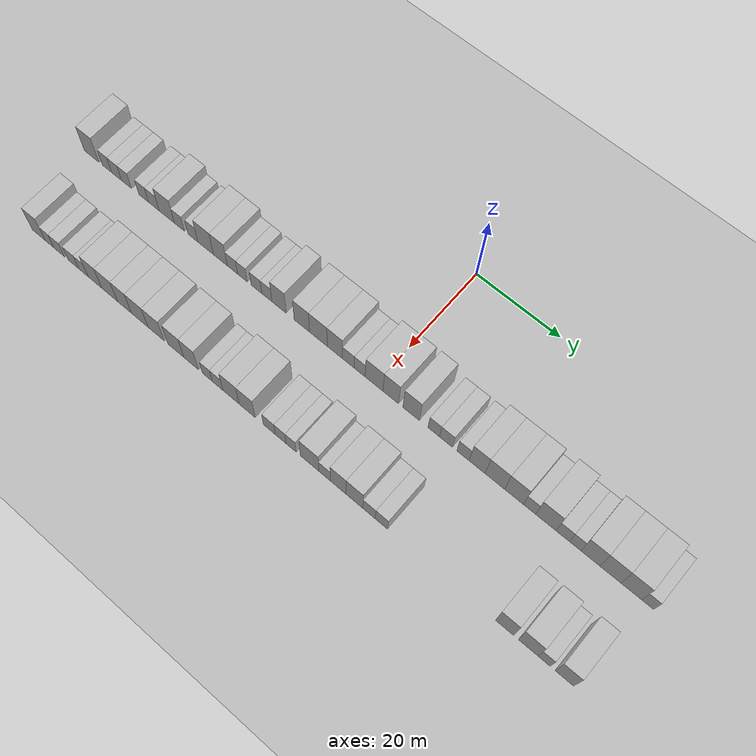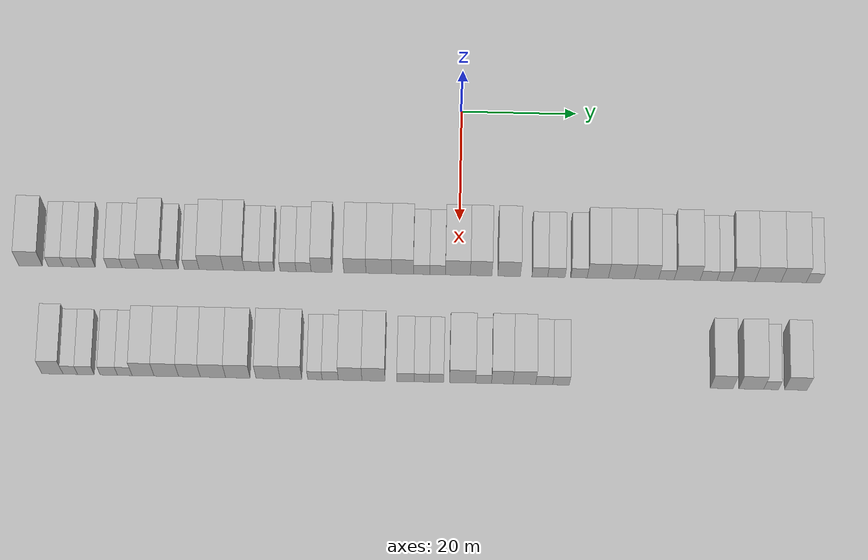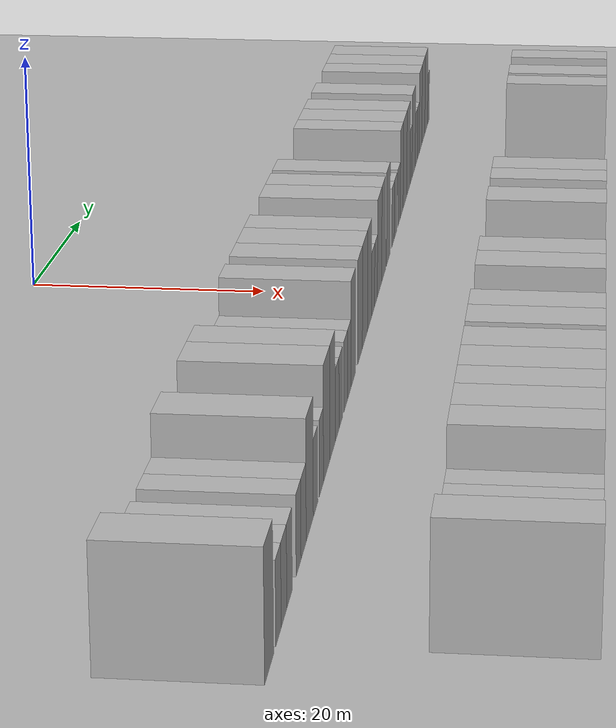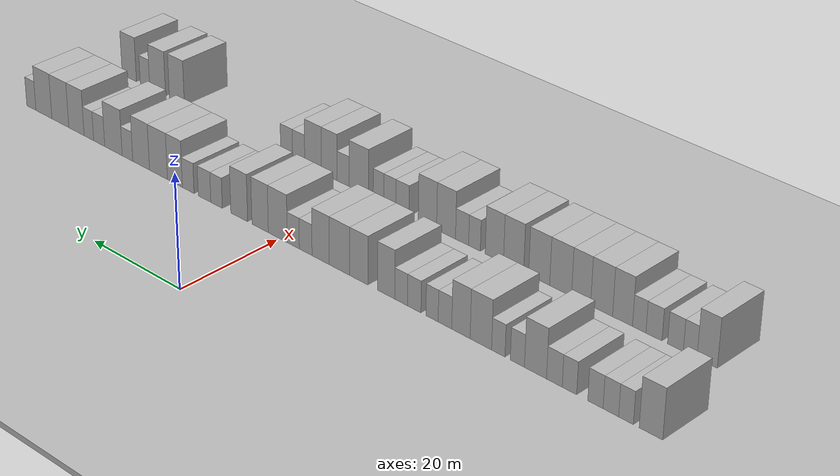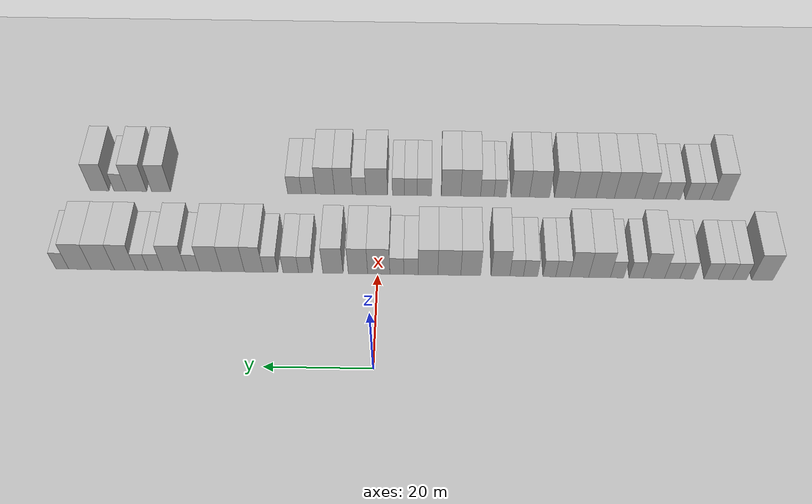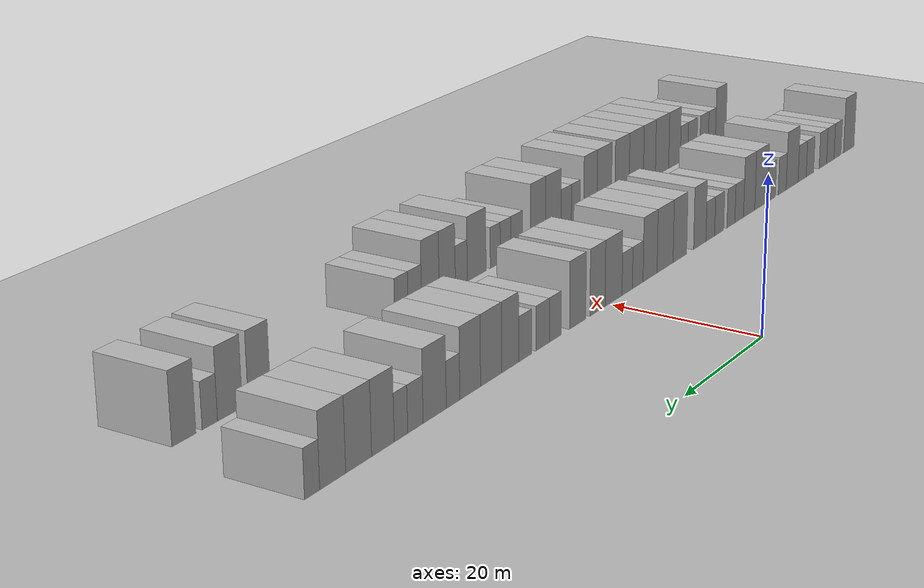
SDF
<sdf version="1.6">
 <world name="default">
  <include><name>ground_plane_1</name><uri>model://HANNAS_ground_plane</uri></include>
  <include>
   <name>ground_plane_2</name>
   <uri>model://HANNAS_ground_plane</uri>
   <pose>100 0 0  0 0 0</pose>
  </include>
  <model name="building_35">
   <static>1</static>
   <pose>25.0000 -73.5526 0 0.000000 0.000000 0.000000</pose>
   <link name="link">
    <pose>0 0 4.50 0 0 0</pose>
    <collision name="collision"><geometry><box><size>10.0000 4.0674 9.0000</size></box></geometry></collision>
    <visual name="visual">
     <cast_shadows>0</cast_shadows>
     <geometry><box><size>10.0000 4.0674 9.0000</size></box></geometry>
     <material>
      <script>
       <uri>model://HANNAS_wall/materials/scripts</uri>
       <uri>model://HANNAS_wall/materials/textures</uri>
       <name>vrc/HANNAS_wall</name>
      </script>
     </material>
    </visual>
   </link>
  </model>
  <model name="building_36">
   <static>1</static>
   <pose>25.0000 -69.2227 0 0.000000 0.000000 0.000000</pose>
   <link name="link">
    <pose>0 0 3.00 0 0 0</pose>
    <collision name="collision"><geometry><box><size>10.0000 2.5924 6.0000</size></box></geometry></collision>
    <visual name="visual">
     <cast_shadows>0</cast_shadows>
     <geometry><box><size>10.0000 2.5924 6.0000</size></box></geometry>
     <material>
      <script>
       <uri>model://HANNAS_wall/materials/scripts</uri>
       <uri>model://HANNAS_wall/materials/textures</uri>
       <name>vrc/HANNAS_wall</name>
      </script>
     </material>
    </visual>
   </link>
  </model>
  <model name="building_37">
   <static>1</static>
   <pose>25.0000 -66.5518 0 0.000000 0.000000 0.000000</pose>
   <link name="link">
    <pose>0 0 3.00 0 0 0</pose>
    <collision name="collision"><geometry><box><size>10.0000 2.7495 6.0000</size></box></geometry></collision>
    <visual name="visual">
     <cast_shadows>0</cast_shadows>
     <geometry><box><size>10.0000 2.7495 6.0000</size></box></geometry>
     <material>
      <script>
       <uri>model://HANNAS_wall/materials/scripts</uri>
       <uri>model://HANNAS_wall/materials/textures</uri>
       <name>vrc/HANNAS_wall</name>
      </script>
     </material>
    </visual>
   </link>
  </model>
  <model name="building_38">
   <static>1</static>
   <pose>25.0000 -63.8082 0 0.000000 0.000000 0.000000</pose>
   <link name="link">
    <pose>0 0 3.00 0 0 0</pose>
    <collision name="collision"><geometry><box><size>10.0000 2.7377 6.0000</size></box></geometry></collision>
    <visual name="visual">
     <cast_shadows>0</cast_shadows>
     <geometry><box><size>10.0000 2.7377 6.0000</size></box></geometry>
     <material>
      <script>
       <uri>model://HANNAS_wall/materials/scripts</uri>
       <uri>model://HANNAS_wall/materials/textures</uri>
       <name>vrc/HANNAS_wall</name>
      </script>
     </material>
    </visual>
   </link>
  </model>
  <model name="building_39">
   <static>1</static>
   <pose>25.0000 -59.1197 0 0.000000 0.000000 0.000000</pose>
   <link name="link">
    <pose>0 0 3.00 0 0 0</pose>
    <collision name="collision"><geometry><box><size>10.0000 2.6392 6.0000</size></box></geometry></collision>
    <visual name="visual">
     <cast_shadows>0</cast_shadows>
     <geometry><box><size>10.0000 2.6392 6.0000</size></box></geometry>
     <material>
      <script>
       <uri>model://HANNAS_wall/materials/scripts</uri>
       <uri>model://HANNAS_wall/materials/textures</uri>
       <name>vrc/HANNAS_wall</name>
      </script>
     </material>
    </visual>
   </link>
  </model>
  <model name="building_40">
   <static>1</static>
   <pose>25.0000 -56.3586 0 0.000000 0.000000 0.000000</pose>
   <link name="link">
    <pose>0 0 3.00 0 0 0</pose>
    <collision name="collision"><geometry><box><size>10.0000 2.8830 6.0000</size></box></geometry></collision>
    <visual name="visual">
     <cast_shadows>0</cast_shadows>
     <geometry><box><size>10.0000 2.8830 6.0000</size></box></geometry>
     <material>
      <script>
       <uri>model://HANNAS_wall/materials/scripts</uri>
       <uri>model://HANNAS_wall/materials/textures</uri>
       <name>vrc/HANNAS_wall</name>
      </script>
     </material>
    </visual>
   </link>
  </model>
  <model name="building_41">
   <static>1</static>
   <pose>25.0000 -52.8612 0 0.000000 0.000000 0.000000</pose>
   <link name="link">
    <pose>0 0 4.50 0 0 0</pose>
    <collision name="collision"><geometry><box><size>10.0000 4.1118 9.0000</size></box></geometry></collision>
    <visual name="visual">
     <cast_shadows>0</cast_shadows>
     <geometry><box><size>10.0000 4.1118 9.0000</size></box></geometry>
     <material>
      <script>
       <uri>model://HANNAS_wall/materials/scripts</uri>
       <uri>model://HANNAS_wall/materials/textures</uri>
       <name>vrc/HANNAS_wall</name>
      </script>
     </material>
    </visual>
   </link>
  </model>
  <model name="building_42">
   <static>1</static>
   <pose>25.0000 -49.4645 0 0.000000 0.000000 0.000000</pose>
   <link name="link">
    <pose>0 0 3.00 0 0 0</pose>
    <collision name="collision"><geometry><box><size>10.0000 2.6816 6.0000</size></box></geometry></collision>
    <visual name="visual">
     <cast_shadows>0</cast_shadows>
     <geometry><box><size>10.0000 2.6816 6.0000</size></box></geometry>
     <material>
      <script>
       <uri>model://HANNAS_wall/materials/scripts</uri>
       <uri>model://HANNAS_wall/materials/textures</uri>
       <name>vrc/HANNAS_wall</name>
      </script>
     </material>
    </visual>
   </link>
  </model>
  <model name="building_43">
   <static>1</static>
   <pose>25.0000 -45.8396 0 0.000000 0.000000 0.000000</pose>
   <link name="link">
    <pose>0 0 3.00 0 0 0</pose>
    <collision name="collision"><geometry><box><size>10.0000 2.5683 6.0000</size></box></geometry></collision>
    <visual name="visual">
     <cast_shadows>0</cast_shadows>
     <geometry><box><size>10.0000 2.5683 6.0000</size></box></geometry>
     <material>
      <script>
       <uri>model://HANNAS_wall/materials/scripts</uri>
       <uri>model://HANNAS_wall/materials/textures</uri>
       <name>vrc/HANNAS_wall</name>
      </script>
     </material>
    </visual>
   </link>
  </model>
  <model name="building_44">
   <static>1</static>
   <pose>25.0000 -42.4790 0 0.000000 0.000000 0.000000</pose>
   <link name="link">
    <pose>0 0 4.50 0 0 0</pose>
    <collision name="collision"><geometry><box><size>10.0000 4.1529 9.0000</size></box></geometry></collision>
    <visual name="visual">
     <cast_shadows>0</cast_shadows>
     <geometry><box><size>10.0000 4.1529 9.0000</size></box></geometry>
     <material>
      <script>
       <uri>model://HANNAS_wall/materials/scripts</uri>
       <uri>model://HANNAS_wall/materials/textures</uri>
       <name>vrc/HANNAS_wall</name>
      </script>
     </material>
    </visual>
   </link>
  </model>
  <model name="building_45">
   <static>1</static>
   <pose>25.0000 -38.5939 0 0.000000 0.000000 0.000000</pose>
   <link name="link">
    <pose>0 0 4.50 0 0 0</pose>
    <collision name="collision"><geometry><box><size>10.0000 3.6173 9.0000</size></box></geometry></collision>
    <visual name="visual">
     <cast_shadows>0</cast_shadows>
     <geometry><box><size>10.0000 3.6173 9.0000</size></box></geometry>
     <material>
      <script>
       <uri>model://HANNAS_wall/materials/scripts</uri>
       <uri>model://HANNAS_wall/materials/textures</uri>
       <name>vrc/HANNAS_wall</name>
      </script>
     </material>
    </visual>
   </link>
  </model>
  <model name="building_46">
   <static>1</static>
   <pose>25.0000 -35.4373 0 0.000000 0.000000 0.000000</pose>
   <link name="link">
    <pose>0 0 3.00 0 0 0</pose>
    <collision name="collision"><geometry><box><size>10.0000 2.6960 6.0000</size></box></geometry></collision>
    <visual name="visual">
     <cast_shadows>0</cast_shadows>
     <geometry><box><size>10.0000 2.6960 6.0000</size></box></geometry>
     <material>
      <script>
       <uri>model://HANNAS_wall/materials/scripts</uri>
       <uri>model://HANNAS_wall/materials/textures</uri>
       <name>vrc/HANNAS_wall</name>
      </script>
     </material>
    </visual>
   </link>
  </model>
  <model name="building_47">
   <static>1</static>
   <pose>25.0000 -32.8653 0 0.000000 0.000000 0.000000</pose>
   <link name="link">
    <pose>0 0 3.00 0 0 0</pose>
    <collision name="collision"><geometry><box><size>10.0000 2.4479 6.0000</size></box></geometry></collision>
    <visual name="visual">
     <cast_shadows>0</cast_shadows>
     <geometry><box><size>10.0000 2.4479 6.0000</size></box></geometry>
     <material>
      <script>
       <uri>model://HANNAS_wall/materials/scripts</uri>
       <uri>model://HANNAS_wall/materials/textures</uri>
       <name>vrc/HANNAS_wall</name>
      </script>
     </material>
    </visual>
   </link>
  </model>
  <model name="building_48">
   <static>1</static>
   <pose>25.0000 -29.2711 0 0.000000 0.000000 0.000000</pose>
   <link name="link">
    <pose>0 0 3.00 0 0 0</pose>
    <collision name="collision"><geometry><box><size>10.0000 2.7404 6.0000</size></box></geometry></collision>
    <visual name="visual">
     <cast_shadows>0</cast_shadows>
     <geometry><box><size>10.0000 2.7404 6.0000</size></box></geometry>
     <material>
      <script>
       <uri>model://HANNAS_wall/materials/scripts</uri>
       <uri>model://HANNAS_wall/materials/textures</uri>
       <name>vrc/HANNAS_wall</name>
      </script>
     </material>
    </visual>
   </link>
  </model>
  <model name="building_49">
   <static>1</static>
   <pose>25.0000 -26.6067 0 0.000000 0.000000 0.000000</pose>
   <link name="link">
    <pose>0 0 3.00 0 0 0</pose>
    <collision name="collision"><geometry><box><size>10.0000 2.5884 6.0000</size></box></geometry></collision>
    <visual name="visual">
     <cast_shadows>0</cast_shadows>
     <geometry><box><size>10.0000 2.5884 6.0000</size></box></geometry>
     <material>
      <script>
       <uri>model://HANNAS_wall/materials/scripts</uri>
       <uri>model://HANNAS_wall/materials/textures</uri>
       <name>vrc/HANNAS_wall</name>
      </script>
     </material>
    </visual>
   </link>
  </model>
  <model name="building_50">
   <static>1</static>
   <pose>25.0000 -23.5110 0 0.000000 0.000000 0.000000</pose>
   <link name="link">
    <pose>0 0 4.50 0 0 0</pose>
    <collision name="collision"><geometry><box><size>10.0000 3.6029 9.0000</size></box></geometry></collision>
    <visual name="visual">
     <cast_shadows>0</cast_shadows>
     <geometry><box><size>10.0000 3.6029 9.0000</size></box></geometry>
     <material>
      <script>
       <uri>model://HANNAS_wall/materials/scripts</uri>
       <uri>model://HANNAS_wall/materials/textures</uri>
       <name>vrc/HANNAS_wall</name>
      </script>
     </material>
    </visual>
   </link>
  </model>
  <model name="building_51">
   <static>1</static>
   <pose>25.0000 -17.8033 0 0.000000 0.000000 0.000000</pose>
   <link name="link">
    <pose>0 0 4.50 0 0 0</pose>
    <collision name="collision"><geometry><box><size>10.0000 3.8126 9.0000</size></box></geometry></collision>
    <visual name="visual">
     <cast_shadows>0</cast_shadows>
     <geometry><box><size>10.0000 3.8126 9.0000</size></box></geometry>
     <material>
      <script>
       <uri>model://HANNAS_wall/materials/scripts</uri>
       <uri>model://HANNAS_wall/materials/textures</uri>
       <name>vrc/HANNAS_wall</name>
      </script>
     </material>
    </visual>
   </link>
  </model>
  <model name="building_52">
   <static>1</static>
   <pose>25.0000 -13.6989 0 0.000000 0.000000 0.000000</pose>
   <link name="link">
    <pose>0 0 4.50 0 0 0</pose>
    <collision name="collision"><geometry><box><size>10.0000 4.3961 9.0000</size></box></geometry></collision>
    <visual name="visual">
     <cast_shadows>0</cast_shadows>
     <geometry><box><size>10.0000 4.3961 9.0000</size></box></geometry>
     <material>
      <script>
       <uri>model://HANNAS_wall/materials/scripts</uri>
       <uri>model://HANNAS_wall/materials/textures</uri>
       <name>vrc/HANNAS_wall</name>
      </script>
     </material>
    </visual>
   </link>
  </model>
  <model name="building_53">
   <static>1</static>
   <pose>25.0000 -9.6226 0 0.000000 0.000000 0.000000</pose>
   <link name="link">
    <pose>0 0 4.50 0 0 0</pose>
    <collision name="collision"><geometry><box><size>10.0000 3.7566 9.0000</size></box></geometry></collision>
    <visual name="visual">
     <cast_shadows>0</cast_shadows>
     <geometry><box><size>10.0000 3.7566 9.0000</size></box></geometry>
     <material>
      <script>
       <uri>model://HANNAS_wall/materials/scripts</uri>
       <uri>model://HANNAS_wall/materials/textures</uri>
       <name>vrc/HANNAS_wall</name>
      </script>
     </material>
    </visual>
   </link>
  </model>
  <model name="building_54">
   <static>1</static>
   <pose>25.0000 -6.3497 0 0.000000 0.000000 0.000000</pose>
   <link name="link">
    <pose>0 0 3.00 0 0 0</pose>
    <collision name="collision"><geometry><box><size>10.0000 2.7892 6.0000</size></box></geometry></collision>
    <visual name="visual">
     <cast_shadows>0</cast_shadows>
     <geometry><box><size>10.0000 2.7892 6.0000</size></box></geometry>
     <material>
      <script>
       <uri>model://HANNAS_wall/materials/scripts</uri>
       <uri>model://HANNAS_wall/materials/textures</uri>
       <name>vrc/HANNAS_wall</name>
      </script>
     </material>
    </visual>
   </link>
  </model>
  <model name="building_55">
   <static>1</static>
   <pose>25.0000 -3.6204 0 0.000000 0.000000 0.000000</pose>
   <link name="link">
    <pose>0 0 3.00 0 0 0</pose>
    <collision name="collision"><geometry><box><size>10.0000 2.6694 6.0000</size></box></geometry></collision>
    <visual name="visual">
     <cast_shadows>0</cast_shadows>
     <geometry><box><size>10.0000 2.6694 6.0000</size></box></geometry>
     <material>
      <script>
       <uri>model://HANNAS_wall/materials/scripts</uri>
       <uri>model://HANNAS_wall/materials/textures</uri>
       <name>vrc/HANNAS_wall</name>
      </script>
     </material>
    </visual>
   </link>
  </model>
  <model name="building_56">
   <static>1</static>
   <pose>25.0000 -0.1524 0 0.000000 0.000000 0.000000</pose>
   <link name="link">
    <pose>0 0 4.50 0 0 0</pose>
    <collision name="collision"><geometry><box><size>10.0000 4.2665 9.0000</size></box></geometry></collision>
    <visual name="visual">
     <cast_shadows>0</cast_shadows>
     <geometry><box><size>10.0000 4.2665 9.0000</size></box></geometry>
     <material>
      <script>
       <uri>model://HANNAS_wall/materials/scripts</uri>
       <uri>model://HANNAS_wall/materials/textures</uri>
       <name>vrc/HANNAS_wall</name>
      </script>
     </material>
    </visual>
   </link>
  </model>
  <model name="building_57">
   <static>1</static>
   <pose>25.0000 3.8382 0 0.000000 0.000000 0.000000</pose>
   <link name="link">
    <pose>0 0 4.50 0 0 0</pose>
    <collision name="collision"><geometry><box><size>10.0000 3.7148 9.0000</size></box></geometry></collision>
    <visual name="visual">
     <cast_shadows>0</cast_shadows>
     <geometry><box><size>10.0000 3.7148 9.0000</size></box></geometry>
     <material>
      <script>
       <uri>model://HANNAS_wall/materials/scripts</uri>
       <uri>model://HANNAS_wall/materials/textures</uri>
       <name>vrc/HANNAS_wall</name>
      </script>
     </material>
    </visual>
   </link>
  </model>
  <model name="building_58">
   <static>1</static>
   <pose>25.0000 8.6369 0 0.000000 0.000000 0.000000</pose>
   <link name="link">
    <pose>0 0 4.50 0 0 0</pose>
    <collision name="collision"><geometry><box><size>10.0000 3.8825 9.0000</size></box></geometry></collision>
    <visual name="visual">
     <cast_shadows>0</cast_shadows>
     <geometry><box><size>10.0000 3.8825 9.0000</size></box></geometry>
     <material>
      <script>
       <uri>model://HANNAS_wall/materials/scripts</uri>
       <uri>model://HANNAS_wall/materials/textures</uri>
       <name>vrc/HANNAS_wall</name>
      </script>
     </material>
    </visual>
   </link>
  </model>
  <model name="building_59">
   <static>1</static>
   <pose>25.0000 13.9258 0 0.000000 0.000000 0.000000</pose>
   <link name="link">
    <pose>0 0 3.00 0 0 0</pose>
    <collision name="collision"><geometry><box><size>10.0000 2.6954 6.0000</size></box></geometry></collision>
    <visual name="visual">
     <cast_shadows>0</cast_shadows>
     <geometry><box><size>10.0000 2.6954 6.0000</size></box></geometry>
     <material>
      <script>
       <uri>model://HANNAS_wall/materials/scripts</uri>
       <uri>model://HANNAS_wall/materials/textures</uri>
       <name>vrc/HANNAS_wall</name>
      </script>
     </material>
    </visual>
   </link>
  </model>
  <model name="building_60">
   <static>1</static>
   <pose>25.0000 16.7665 0 0.000000 0.000000 0.000000</pose>
   <link name="link">
    <pose>0 0 3.00 0 0 0</pose>
    <collision name="collision"><geometry><box><size>10.0000 2.9861 6.0000</size></box></geometry></collision>
    <visual name="visual">
     <cast_shadows>0</cast_shadows>
     <geometry><box><size>10.0000 2.9861 6.0000</size></box></geometry>
     <material>
      <script>
       <uri>model://HANNAS_wall/materials/scripts</uri>
       <uri>model://HANNAS_wall/materials/textures</uri>
       <name>vrc/HANNAS_wall</name>
      </script>
     </material>
    </visual>
   </link>
  </model>
  <model name="building_61">
   <static>1</static>
   <pose>25.0000 20.6557 0 0.000000 0.000000 0.000000</pose>
   <link name="link">
    <pose>0 0 3.00 0 0 0</pose>
    <collision name="collision"><geometry><box><size>10.0000 2.7921 6.0000</size></box></geometry></collision>
    <visual name="visual">
     <cast_shadows>0</cast_shadows>
     <geometry><box><size>10.0000 2.7921 6.0000</size></box></geometry>
     <material>
      <script>
       <uri>model://HANNAS_wall/materials/scripts</uri>
       <uri>model://HANNAS_wall/materials/textures</uri>
       <name>vrc/HANNAS_wall</name>
      </script>
     </material>
    </visual>
   </link>
  </model>
  <model name="building_62">
   <static>1</static>
   <pose>25.0000 23.8682 0 0.000000 0.000000 0.000000</pose>
   <link name="link">
    <pose>0 0 4.50 0 0 0</pose>
    <collision name="collision"><geometry><box><size>10.0000 3.6329 9.0000</size></box></geometry></collision>
    <visual name="visual">
     <cast_shadows>0</cast_shadows>
     <geometry><box><size>10.0000 3.6329 9.0000</size></box></geometry>
     <material>
      <script>
       <uri>model://HANNAS_wall/materials/scripts</uri>
       <uri>model://HANNAS_wall/materials/textures</uri>
       <name>vrc/HANNAS_wall</name>
      </script>
     </material>
    </visual>
   </link>
  </model>
  <model name="building_63">
   <static>1</static>
   <pose>25.0000 27.8984 0 0.000000 0.000000 0.000000</pose>
   <link name="link">
    <pose>0 0 4.50 0 0 0</pose>
    <collision name="collision"><geometry><box><size>10.0000 4.4277 9.0000</size></box></geometry></collision>
    <visual name="visual">
     <cast_shadows>0</cast_shadows>
     <geometry><box><size>10.0000 4.4277 9.0000</size></box></geometry>
     <material>
      <script>
       <uri>model://HANNAS_wall/materials/scripts</uri>
       <uri>model://HANNAS_wall/materials/textures</uri>
       <name>vrc/HANNAS_wall</name>
      </script>
     </material>
    </visual>
   </link>
  </model>
  <model name="building_64">
   <static>1</static>
   <pose>25.0000 32.2026 0 0.000000 0.000000 0.000000</pose>
   <link name="link">
    <pose>0 0 4.50 0 0 0</pose>
    <collision name="collision"><geometry><box><size>10.0000 4.1807 9.0000</size></box></geometry></collision>
    <visual name="visual">
     <cast_shadows>0</cast_shadows>
     <geometry><box><size>10.0000 4.1807 9.0000</size></box></geometry>
     <material>
      <script>
       <uri>model://HANNAS_wall/materials/scripts</uri>
       <uri>model://HANNAS_wall/materials/textures</uri>
       <name>vrc/HANNAS_wall</name>
      </script>
     </material>
    </visual>
   </link>
  </model>
  <model name="building_65">
   <static>1</static>
   <pose>25.0000 35.6311 0 0.000000 0.000000 0.000000</pose>
   <link name="link">
    <pose>0 0 3.00 0 0 0</pose>
    <collision name="collision"><geometry><box><size>10.0000 2.6762 6.0000</size></box></geometry></collision>
    <visual name="visual">
     <cast_shadows>0</cast_shadows>
     <geometry><box><size>10.0000 2.6762 6.0000</size></box></geometry>
     <material>
      <script>
       <uri>model://HANNAS_wall/materials/scripts</uri>
       <uri>model://HANNAS_wall/materials/textures</uri>
       <name>vrc/HANNAS_wall</name>
      </script>
     </material>
    </visual>
   </link>
  </model>
  <model name="building_66">
   <static>1</static>
   <pose>25.0000 39.1964 0 0.000000 0.000000 0.000000</pose>
   <link name="link">
    <pose>0 0 4.50 0 0 0</pose>
    <collision name="collision"><geometry><box><size>10.0000 4.4546 9.0000</size></box></geometry></collision>
    <visual name="visual">
     <cast_shadows>0</cast_shadows>
     <geometry><box><size>10.0000 4.4546 9.0000</size></box></geometry>
     <material>
      <script>
       <uri>model://HANNAS_wall/materials/scripts</uri>
       <uri>model://HANNAS_wall/materials/textures</uri>
       <name>vrc/HANNAS_wall</name>
      </script>
     </material>
    </visual>
   </link>
  </model>
  <model name="building_67">
   <static>1</static>
   <pose>25.0000 42.8614 0 0.000000 0.000000 0.000000</pose>
   <link name="link">
    <pose>0 0 3.00 0 0 0</pose>
    <collision name="collision"><geometry><box><size>10.0000 2.8753 6.0000</size></box></geometry></collision>
    <visual name="visual">
     <cast_shadows>0</cast_shadows>
     <geometry><box><size>10.0000 2.8753 6.0000</size></box></geometry>
     <material>
      <script>
       <uri>model://HANNAS_wall/materials/scripts</uri>
       <uri>model://HANNAS_wall/materials/textures</uri>
       <name>vrc/HANNAS_wall</name>
      </script>
     </material>
    </visual>
   </link>
  </model>
  <model name="building_68">
   <static>1</static>
   <pose>25.0000 45.5299 0 0.000000 0.000000 0.000000</pose>
   <link name="link">
    <pose>0 0 3.00 0 0 0</pose>
    <collision name="collision"><geometry><box><size>10.0000 2.4617 6.0000</size></box></geometry></collision>
    <visual name="visual">
     <cast_shadows>0</cast_shadows>
     <geometry><box><size>10.0000 2.4617 6.0000</size></box></geometry>
     <material>
      <script>
       <uri>model://HANNAS_wall/materials/scripts</uri>
       <uri>model://HANNAS_wall/materials/textures</uri>
       <name>vrc/HANNAS_wall</name>
      </script>
     </material>
    </visual>
   </link>
  </model>
  <model name="building_69">
   <static>1</static>
   <pose>25.0000 48.7760 0 0.000000 0.000000 0.000000</pose>
   <link name="link">
    <pose>0 0 4.50 0 0 0</pose>
    <collision name="collision"><geometry><box><size>10.0000 4.0304 9.0000</size></box></geometry></collision>
    <visual name="visual">
     <cast_shadows>0</cast_shadows>
     <geometry><box><size>10.0000 4.0304 9.0000</size></box></geometry>
     <material>
      <script>
       <uri>model://HANNAS_wall/materials/scripts</uri>
       <uri>model://HANNAS_wall/materials/textures</uri>
       <name>vrc/HANNAS_wall</name>
      </script>
     </material>
    </visual>
   </link>
  </model>
  <model name="building_70">
   <static>1</static>
   <pose>25.0000 53.0402 0 0.000000 0.000000 0.000000</pose>
   <link name="link">
    <pose>0 0 4.50 0 0 0</pose>
    <collision name="collision"><geometry><box><size>10.0000 4.4980 9.0000</size></box></geometry></collision>
    <visual name="visual">
     <cast_shadows>0</cast_shadows>
     <geometry><box><size>10.0000 4.4980 9.0000</size></box></geometry>
     <material>
      <script>
       <uri>model://HANNAS_wall/materials/scripts</uri>
       <uri>model://HANNAS_wall/materials/textures</uri>
       <name>vrc/HANNAS_wall</name>
      </script>
     </material>
    </visual>
   </link>
  </model>
  <model name="building_71">
   <static>1</static>
   <pose>25.0000 57.4577 0 0.000000 0.000000 0.000000</pose>
   <link name="link">
    <pose>0 0 4.50 0 0 0</pose>
    <collision name="collision"><geometry><box><size>10.0000 4.3369 9.0000</size></box></geometry></collision>
    <visual name="visual">
     <cast_shadows>0</cast_shadows>
     <geometry><box><size>10.0000 4.3369 9.0000</size></box></geometry>
     <material>
      <script>
       <uri>model://HANNAS_wall/materials/scripts</uri>
       <uri>model://HANNAS_wall/materials/textures</uri>
       <name>vrc/HANNAS_wall</name>
      </script>
     </material>
    </visual>
   </link>
  </model>
  <model name="building_72">
   <static>1</static>
   <pose>25.0000 60.8643 0 0.000000 0.000000 0.000000</pose>
   <link name="link">
    <pose>0 0 3.00 0 0 0</pose>
    <collision name="collision"><geometry><box><size>10.0000 2.4762 6.0000</size></box></geometry></collision>
    <visual name="visual">
     <cast_shadows>0</cast_shadows>
     <geometry><box><size>10.0000 2.4762 6.0000</size></box></geometry>
     <material>
      <script>
       <uri>model://HANNAS_wall/materials/scripts</uri>
       <uri>model://HANNAS_wall/materials/textures</uri>
       <name>vrc/HANNAS_wall</name>
      </script>
     </material>
    </visual>
   </link>
  </model>
  <model name="building_135">
   <static>1</static>
   <pose>44.0000 -68.5990 0 0.000000 0.000000 0.000000</pose>
   <link name="link">
    <pose>0 0 4.50 0 0 0</pose>
    <collision name="collision"><geometry><box><size>10.0000 3.6041 9.0000</size></box></geometry></collision>
    <visual name="visual">
     <cast_shadows>0</cast_shadows>
     <geometry><box><size>10.0000 3.6041 9.0000</size></box></geometry>
     <material>
      <script>
       <uri>model://HANNAS_wall/materials/scripts</uri>
       <uri>model://HANNAS_wall/materials/textures</uri>
       <name>vrc/HANNAS_wall</name>
      </script>
     </material>
    </visual>
   </link>
  </model>
  <model name="building_136">
   <static>1</static>
   <pose>44.0000 -65.5714 0 0.000000 0.000000 0.000000</pose>
   <link name="link">
    <pose>0 0 3.00 0 0 0</pose>
    <collision name="collision"><geometry><box><size>10.0000 2.4511 6.0000</size></box></geometry></collision>
    <visual name="visual">
     <cast_shadows>0</cast_shadows>
     <geometry><box><size>10.0000 2.4511 6.0000</size></box></geometry>
     <material>
      <script>
       <uri>model://HANNAS_wall/materials/scripts</uri>
       <uri>model://HANNAS_wall/materials/textures</uri>
       <name>vrc/HANNAS_wall</name>
      </script>
     </material>
    </visual>
   </link>
  </model>
  <model name="building_137">
   <static>1</static>
   <pose>44.0000 -62.9184 0 0.000000 0.000000 0.000000</pose>
   <link name="link">
    <pose>0 0 3.00 0 0 0</pose>
    <collision name="collision"><geometry><box><size>10.0000 2.8548 6.0000</size></box></geometry></collision>
    <visual name="visual">
     <cast_shadows>0</cast_shadows>
     <geometry><box><size>10.0000 2.8548 6.0000</size></box></geometry>
     <material>
      <script>
       <uri>model://HANNAS_wall/materials/scripts</uri>
       <uri>model://HANNAS_wall/materials/textures</uri>
       <name>vrc/HANNAS_wall</name>
      </script>
     </material>
    </visual>
   </link>
  </model>
  <model name="building_138">
   <static>1</static>
   <pose>44.0000 -59.0191 0 0.000000 0.000000 0.000000</pose>
   <link name="link">
    <pose>0 0 3.00 0 0 0</pose>
    <collision name="collision"><geometry><box><size>10.0000 2.9438 6.0000</size></box></geometry></collision>
    <visual name="visual">
     <cast_shadows>0</cast_shadows>
     <geometry><box><size>10.0000 2.9438 6.0000</size></box></geometry>
     <material>
      <script>
       <uri>model://HANNAS_wall/materials/scripts</uri>
       <uri>model://HANNAS_wall/materials/textures</uri>
       <name>vrc/HANNAS_wall</name>
      </script>
     </material>
    </visual>
   </link>
  </model>
  <model name="building_139">
   <static>1</static>
   <pose>44.0000 -56.3007 0 0.000000 0.000000 0.000000</pose>
   <link name="link">
    <pose>0 0 3.00 0 0 0</pose>
    <collision name="collision"><geometry><box><size>10.0000 2.4931 6.0000</size></box></geometry></collision>
    <visual name="visual">
     <cast_shadows>0</cast_shadows>
     <geometry><box><size>10.0000 2.4931 6.0000</size></box></geometry>
     <material>
      <script>
       <uri>model://HANNAS_wall/materials/scripts</uri>
       <uri>model://HANNAS_wall/materials/textures</uri>
       <name>vrc/HANNAS_wall</name>
      </script>
     </material>
    </visual>
   </link>
  </model>
  <model name="building_140">
   <static>1</static>
   <pose>44.0000 -53.1872 0 0.000000 0.000000 0.000000</pose>
   <link name="link">
    <pose>0 0 4.50 0 0 0</pose>
    <collision name="collision"><geometry><box><size>10.0000 3.7338 9.0000</size></box></geometry></collision>
    <visual name="visual">
     <cast_shadows>0</cast_shadows>
     <geometry><box><size>10.0000 3.7338 9.0000</size></box></geometry>
     <material>
      <script>
       <uri>model://HANNAS_wall/materials/scripts</uri>
       <uri>model://HANNAS_wall/materials/textures</uri>
       <name>vrc/HANNAS_wall</name>
      </script>
     </material>
    </visual>
   </link>
  </model>
  <model name="building_141">
   <static>1</static>
   <pose>44.0000 -49.2376 0 0.000000 0.000000 0.000000</pose>
   <link name="link">
    <pose>0 0 4.50 0 0 0</pose>
    <collision name="collision"><geometry><box><size>10.0000 4.1656 9.0000</size></box></geometry></collision>
    <visual name="visual">
     <cast_shadows>0</cast_shadows>
     <geometry><box><size>10.0000 4.1656 9.0000</size></box></geometry>
     <material>
      <script>
       <uri>model://HANNAS_wall/materials/scripts</uri>
       <uri>model://HANNAS_wall/materials/textures</uri>
       <name>vrc/HANNAS_wall</name>
      </script>
     </material>
    </visual>
   </link>
  </model>
  <model name="building_142">
   <static>1</static>
   <pose>44.0000 -45.3134 0 0.000000 0.000000 0.000000</pose>
   <link name="link">
    <pose>0 0 4.50 0 0 0</pose>
    <collision name="collision"><geometry><box><size>10.0000 3.6827 9.0000</size></box></geometry></collision>
    <visual name="visual">
     <cast_shadows>0</cast_shadows>
     <geometry><box><size>10.0000 3.6827 9.0000</size></box></geometry>
     <material>
      <script>
       <uri>model://HANNAS_wall/materials/scripts</uri>
       <uri>model://HANNAS_wall/materials/textures</uri>
       <name>vrc/HANNAS_wall</name>
      </script>
     </material>
    </visual>
   </link>
  </model>
  <model name="building_143">
   <static>1</static>
   <pose>44.0000 -41.3344 0 0.000000 0.000000 0.000000</pose>
   <link name="link">
    <pose>0 0 4.50 0 0 0</pose>
    <collision name="collision"><geometry><box><size>10.0000 4.2753 9.0000</size></box></geometry></collision>
    <visual name="visual">
     <cast_shadows>0</cast_shadows>
     <geometry><box><size>10.0000 4.2753 9.0000</size></box></geometry>
     <material>
      <script>
       <uri>model://HANNAS_wall/materials/scripts</uri>
       <uri>model://HANNAS_wall/materials/textures</uri>
       <name>vrc/HANNAS_wall</name>
      </script>
     </material>
    </visual>
   </link>
  </model>
  <model name="building_144">
   <static>1</static>
   <pose>44.0000 -37.1132 0 0.000000 0.000000 0.000000</pose>
   <link name="link">
    <pose>0 0 4.50 0 0 0</pose>
    <collision name="collision"><geometry><box><size>10.0000 4.1670 9.0000</size></box></geometry></collision>
    <visual name="visual">
     <cast_shadows>0</cast_shadows>
     <geometry><box><size>10.0000 4.1670 9.0000</size></box></geometry>
     <material>
      <script>
       <uri>model://HANNAS_wall/materials/scripts</uri>
       <uri>model://HANNAS_wall/materials/textures</uri>
       <name>vrc/HANNAS_wall</name>
      </script>
     </material>
    </visual>
   </link>
  </model>
  <model name="building_145">
   <static>1</static>
   <pose>44.0000 -31.9978 0 0.000000 0.000000 0.000000</pose>
   <link name="link">
    <pose>0 0 4.50 0 0 0</pose>
    <collision name="collision"><geometry><box><size>10.0000 4.0639 9.0000</size></box></geometry></collision>
    <visual name="visual">
     <cast_shadows>0</cast_shadows>
     <geometry><box><size>10.0000 4.0639 9.0000</size></box></geometry>
     <material>
      <script>
       <uri>model://HANNAS_wall/materials/scripts</uri>
       <uri>model://HANNAS_wall/materials/textures</uri>
       <name>vrc/HANNAS_wall</name>
      </script>
     </material>
    </visual>
   </link>
  </model>
  <model name="building_146">
   <static>1</static>
   <pose>44.0000 -28.1006 0 0.000000 0.000000 0.000000</pose>
   <link name="link">
    <pose>0 0 4.50 0 0 0</pose>
    <collision name="collision"><geometry><box><size>10.0000 3.7305 9.0000</size></box></geometry></collision>
    <visual name="visual">
     <cast_shadows>0</cast_shadows>
     <geometry><box><size>10.0000 3.7305 9.0000</size></box></geometry>
     <material>
      <script>
       <uri>model://HANNAS_wall/materials/scripts</uri>
       <uri>model://HANNAS_wall/materials/textures</uri>
       <name>vrc/HANNAS_wall</name>
      </script>
     </material>
    </visual>
   </link>
  </model>
  <model name="building_147">
   <static>1</static>
   <pose>44.0000 -24.0161 0 0.000000 0.000000 0.000000</pose>
   <link name="link">
    <pose>0 0 3.00 0 0 0</pose>
    <collision name="collision"><geometry><box><size>10.0000 2.4384 6.0000</size></box></geometry></collision>
    <visual name="visual">
     <cast_shadows>0</cast_shadows>
     <geometry><box><size>10.0000 2.4384 6.0000</size></box></geometry>
     <material>
      <script>
       <uri>model://HANNAS_wall/materials/scripts</uri>
       <uri>model://HANNAS_wall/materials/textures</uri>
       <name>vrc/HANNAS_wall</name>
      </script>
     </material>
    </visual>
   </link>
  </model>
  <model name="building_148">
   <static>1</static>
   <pose>44.0000 -21.4292 0 0.000000 0.000000 0.000000</pose>
   <link name="link">
    <pose>0 0 3.00 0 0 0</pose>
    <collision name="collision"><geometry><box><size>10.0000 2.7354 6.0000</size></box></geometry></collision>
    <visual name="visual">
     <cast_shadows>0</cast_shadows>
     <geometry><box><size>10.0000 2.7354 6.0000</size></box></geometry>
     <material>
      <script>
       <uri>model://HANNAS_wall/materials/scripts</uri>
       <uri>model://HANNAS_wall/materials/textures</uri>
       <name>vrc/HANNAS_wall</name>
      </script>
     </material>
    </visual>
   </link>
  </model>
  <model name="building_149">
   <static>1</static>
   <pose>44.0000 -18.0598 0 0.000000 0.000000 0.000000</pose>
   <link name="link">
    <pose>0 0 4.50 0 0 0</pose>
    <collision name="collision"><geometry><box><size>10.0000 4.0036 9.0000</size></box></geometry></collision>
    <visual name="visual">
     <cast_shadows>0</cast_shadows>
     <geometry><box><size>10.0000 4.0036 9.0000</size></box></geometry>
     <material>
      <script>
       <uri>model://HANNAS_wall/materials/scripts</uri>
       <uri>model://HANNAS_wall/materials/textures</uri>
       <name>vrc/HANNAS_wall</name>
      </script>
     </material>
    </visual>
   </link>
  </model>
  <model name="building_150">
   <static>1</static>
   <pose>44.0000 -14.0947 0 0.000000 0.000000 0.000000</pose>
   <link name="link">
    <pose>0 0 4.50 0 0 0</pose>
    <collision name="collision"><geometry><box><size>10.0000 3.9265 9.0000</size></box></geometry></collision>
    <visual name="visual">
     <cast_shadows>0</cast_shadows>
     <geometry><box><size>10.0000 3.9265 9.0000</size></box></geometry>
     <material>
      <script>
       <uri>model://HANNAS_wall/materials/scripts</uri>
       <uri>model://HANNAS_wall/materials/textures</uri>
       <name>vrc/HANNAS_wall</name>
      </script>
     </material>
    </visual>
   </link>
  </model>
  <model name="building_151">
   <static>1</static>
   <pose>44.0000 -8.6820 0 0.000000 0.000000 0.000000</pose>
   <link name="link">
    <pose>0 0 3.00 0 0 0</pose>
    <collision name="collision"><geometry><box><size>10.0000 2.8989 6.0000</size></box></geometry></collision>
    <visual name="visual">
     <cast_shadows>0</cast_shadows>
     <geometry><box><size>10.0000 2.8989 6.0000</size></box></geometry>
     <material>
      <script>
       <uri>model://HANNAS_wall/materials/scripts</uri>
       <uri>model://HANNAS_wall/materials/textures</uri>
       <name>vrc/HANNAS_wall</name>
      </script>
     </material>
    </visual>
   </link>
  </model>
  <model name="building_152">
   <static>1</static>
   <pose>44.0000 -5.9228 0 0.000000 0.000000 0.000000</pose>
   <link name="link">
    <pose>0 0 3.00 0 0 0</pose>
    <collision name="collision"><geometry><box><size>10.0000 2.6196 6.0000</size></box></geometry></collision>
    <visual name="visual">
     <cast_shadows>0</cast_shadows>
     <geometry><box><size>10.0000 2.6196 6.0000</size></box></geometry>
     <material>
      <script>
       <uri>model://HANNAS_wall/materials/scripts</uri>
       <uri>model://HANNAS_wall/materials/textures</uri>
       <name>vrc/HANNAS_wall</name>
      </script>
     </material>
    </visual>
   </link>
  </model>
  <model name="building_153">
   <static>1</static>
   <pose>44.0000 -3.4100 0 0.000000 0.000000 0.000000</pose>
   <link name="link">
    <pose>0 0 3.00 0 0 0</pose>
    <collision name="collision"><geometry><box><size>10.0000 2.4061 6.0000</size></box></geometry></collision>
    <visual name="visual">
     <cast_shadows>0</cast_shadows>
     <geometry><box><size>10.0000 2.4061 6.0000</size></box></geometry>
     <material>
      <script>
       <uri>model://HANNAS_wall/materials/scripts</uri>
       <uri>model://HANNAS_wall/materials/textures</uri>
       <name>vrc/HANNAS_wall</name>
      </script>
     </material>
    </visual>
   </link>
  </model>
  <model name="building_154">
   <static>1</static>
   <pose>44.0000 0.9927 0 0.000000 0.000000 0.000000</pose>
   <link name="link">
    <pose>0 0 4.50 0 0 0</pose>
    <collision name="collision"><geometry><box><size>10.0000 4.3993 9.0000</size></box></geometry></collision>
    <visual name="visual">
     <cast_shadows>0</cast_shadows>
     <geometry><box><size>10.0000 4.3993 9.0000</size></box></geometry>
     <material>
      <script>
       <uri>model://HANNAS_wall/materials/scripts</uri>
       <uri>model://HANNAS_wall/materials/textures</uri>
       <name>vrc/HANNAS_wall</name>
      </script>
     </material>
    </visual>
   </link>
  </model>
  <model name="building_155">
   <static>1</static>
   <pose>44.0000 4.5501 0 0.000000 0.000000 0.000000</pose>
   <link name="link">
    <pose>0 0 3.00 0 0 0</pose>
    <collision name="collision"><geometry><box><size>10.0000 2.7154 6.0000</size></box></geometry></collision>
    <visual name="visual">
     <cast_shadows>0</cast_shadows>
     <geometry><box><size>10.0000 2.7154 6.0000</size></box></geometry>
     <material>
      <script>
       <uri>model://HANNAS_wall/materials/scripts</uri>
       <uri>model://HANNAS_wall/materials/textures</uri>
       <name>vrc/HANNAS_wall</name>
      </script>
     </material>
    </visual>
   </link>
  </model>
  <model name="building_156">
   <static>1</static>
   <pose>44.0000 7.7224 0 0.000000 0.000000 0.000000</pose>
   <link name="link">
    <pose>0 0 4.50 0 0 0</pose>
    <collision name="collision"><geometry><box><size>10.0000 3.6291 9.0000</size></box></geometry></collision>
    <visual name="visual">
     <cast_shadows>0</cast_shadows>
     <geometry><box><size>10.0000 3.6291 9.0000</size></box></geometry>
     <material>
      <script>
       <uri>model://HANNAS_wall/materials/scripts</uri>
       <uri>model://HANNAS_wall/materials/textures</uri>
       <name>vrc/HANNAS_wall</name>
      </script>
     </material>
    </visual>
   </link>
  </model>
  <model name="building_157">
   <static>1</static>
   <pose>44.0000 11.4718 0 0.000000 0.000000 0.000000</pose>
   <link name="link">
    <pose>0 0 4.50 0 0 0</pose>
    <collision name="collision"><geometry><box><size>10.0000 3.8698 9.0000</size></box></geometry></collision>
    <visual name="visual">
     <cast_shadows>0</cast_shadows>
     <geometry><box><size>10.0000 3.8698 9.0000</size></box></geometry>
     <material>
      <script>
       <uri>model://HANNAS_wall/materials/scripts</uri>
       <uri>model://HANNAS_wall/materials/textures</uri>
       <name>vrc/HANNAS_wall</name>
      </script>
     </material>
    </visual>
   </link>
  </model>
  <model name="building_158">
   <static>1</static>
   <pose>44.0000 14.8447 0 0.000000 0.000000 0.000000</pose>
   <link name="link">
    <pose>0 0 3.00 0 0 0</pose>
    <collision name="collision"><geometry><box><size>10.0000 2.8759 6.0000</size></box></geometry></collision>
    <visual name="visual">
     <cast_shadows>0</cast_shadows>
     <geometry><box><size>10.0000 2.8759 6.0000</size></box></geometry>
     <material>
      <script>
       <uri>model://HANNAS_wall/materials/scripts</uri>
       <uri>model://HANNAS_wall/materials/textures</uri>
       <name>vrc/HANNAS_wall</name>
      </script>
     </material>
    </visual>
   </link>
  </model>
  <model name="building_159">
   <static>1</static>
   <pose>44.0000 17.6939 0 0.000000 0.000000 0.000000</pose>
   <link name="link">
    <pose>0 0 3.00 0 0 0</pose>
    <collision name="collision"><geometry><box><size>10.0000 2.8226 6.0000</size></box></geometry></collision>
    <visual name="visual">
     <cast_shadows>0</cast_shadows>
     <geometry><box><size>10.0000 2.8226 6.0000</size></box></geometry>
     <material>
      <script>
       <uri>model://HANNAS_wall/materials/scripts</uri>
       <uri>model://HANNAS_wall/materials/textures</uri>
       <name>vrc/HANNAS_wall</name>
      </script>
     </material>
    </visual>
   </link>
  </model>
  <model name="building_160">
   <static>1</static>
   <pose>44.0000 44.9140 0 0.000000 0.000000 0.000000</pose>
   <link name="link">
    <pose>0 0 4.50 0 0 0</pose>
    <collision name="collision"><geometry><box><size>10.0000 3.8726 9.0000</size></box></geometry></collision>
    <visual name="visual">
     <cast_shadows>0</cast_shadows>
     <geometry><box><size>10.0000 3.8726 9.0000</size></box></geometry>
     <material>
      <script>
       <uri>model://HANNAS_wall/materials/scripts</uri>
       <uri>model://HANNAS_wall/materials/textures</uri>
       <name>vrc/HANNAS_wall</name>
      </script>
     </material>
    </visual>
   </link>
  </model>
  <model name="building_161">
   <static>1</static>
   <pose>44.0000 49.9373 0 0.000000 0.000000 0.000000</pose>
   <link name="link">
    <pose>0 0 4.50 0 0 0</pose>
    <collision name="collision"><geometry><box><size>10.0000 4.1739 9.0000</size></box></geometry></collision>
    <visual name="visual">
     <cast_shadows>0</cast_shadows>
     <geometry><box><size>10.0000 4.1739 9.0000</size></box></geometry>
     <material>
      <script>
       <uri>model://HANNAS_wall/materials/scripts</uri>
       <uri>model://HANNAS_wall/materials/textures</uri>
       <name>vrc/HANNAS_wall</name>
      </script>
     </material>
    </visual>
   </link>
  </model>
  <model name="building_162">
   <static>1</static>
   <pose>44.0000 53.2842 0 0.000000 0.000000 0.000000</pose>
   <link name="link">
    <pose>0 0 3.00 0 0 0</pose>
    <collision name="collision"><geometry><box><size>10.0000 2.5200 6.0000</size></box></geometry></collision>
    <visual name="visual">
     <cast_shadows>0</cast_shadows>
     <geometry><box><size>10.0000 2.5200 6.0000</size></box></geometry>
     <material>
      <script>
       <uri>model://HANNAS_wall/materials/scripts</uri>
       <uri>model://HANNAS_wall/materials/textures</uri>
       <name>vrc/HANNAS_wall</name>
      </script>
     </material>
    </visual>
   </link>
  </model>
  <model name="building_163">
   <static>1</static>
   <pose>44.0000 57.4612 0 0.000000 0.000000 0.000000</pose>
   <link name="link">
    <pose>0 0 4.50 0 0 0</pose>
    <collision name="collision"><geometry><box><size>10.0000 3.8340 9.0000</size></box></geometry></collision>
    <visual name="visual">
     <cast_shadows>0</cast_shadows>
     <geometry><box><size>10.0000 3.8340 9.0000</size></box></geometry>
     <material>
      <script>
       <uri>model://HANNAS_wall/materials/scripts</uri>
       <uri>model://HANNAS_wall/materials/textures</uri>
       <name>vrc/HANNAS_wall</name>
      </script>
     </material>
    </visual>
   </link>
  </model>
 </world>
</sdf>
